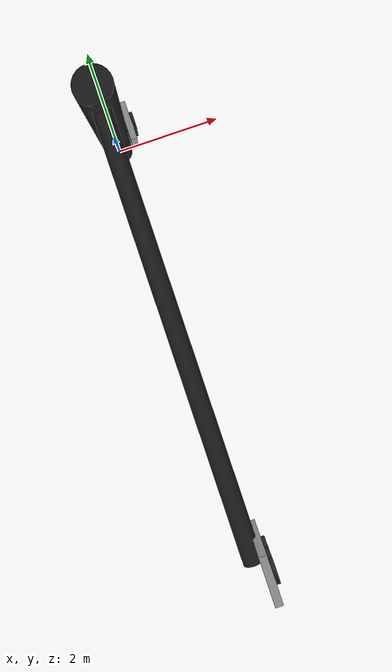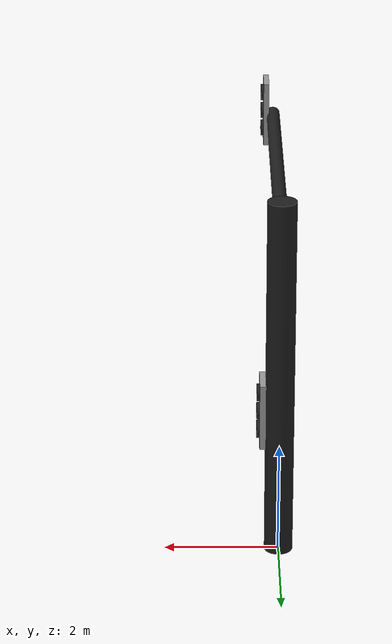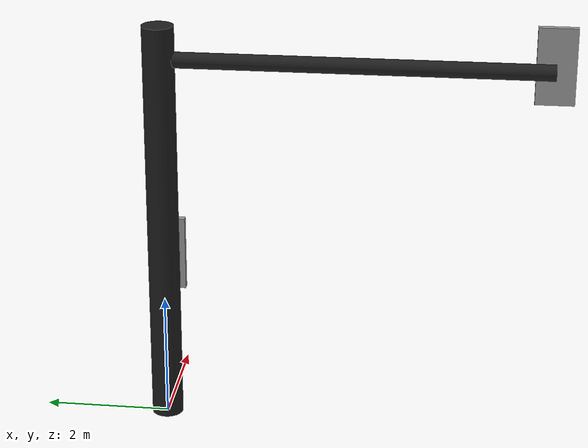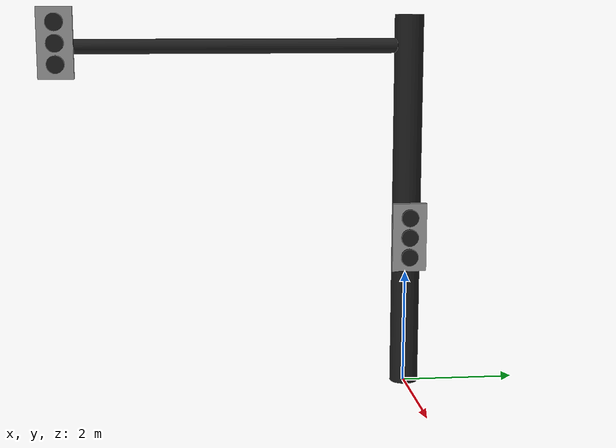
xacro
<?xml version="1.0"?>
<robot xmlns:xacro="http://www.ros.org/wiki/xacro" name="gazebo_traffic_light">

  <!-- Define some properties for reusability -->
  <xacro:property name="box_size" value="0.1 0.6 1.2"/>
  <xacro:property name="cylinder_radius" value="0.15"/>
  <xacro:property name="green_off_length" value="0.05"/>
  <xacro:property name="green_on_length" value="0.002"/>
  <xacro:property name="yellow_off_length" value="0.05"/>
  <xacro:property name="yellow_on_length" value="0.002"/>
  <xacro:property name="red_off_length" value="0.05"/>
  <xacro:property name="red_on_length" value="0.002"/>

  <!-- Cantilevered Light Model -->
  <link name="base">
    <inertial>
      <mass value="1.0"/>
      <origin xyz="0 0 0" rpy="0 0 0"/>
      <inertia ixx="1.0" ixy="0.0" ixz="0.0" iyy="1.0" iyz="0.0" izz="1.0"/>
    </inertial>
    <visual>
      <geometry>
        <cylinder radius="0.25" length="6.55"/>
      </geometry>
      <origin xyz="0 0 3.275" rpy="0 0 0"/>
      <material name="black"/>
    </visual>
    <collision>
      <geometry>
        <cylinder radius="0.25" length="6.55"/>
      </geometry>
      <origin xyz="0 0 3.275" rpy="0 0 0"/>
    </collision>
  </link>

  <gazebo reference="base">
    <gravity>0</gravity>
  </gazebo>

  <link name="cross_beam">
    <inertial>
      <mass value="1.0"/>
      <origin xyz="0 0 0" rpy="0 0 0"/>
      <inertia ixx="1.0" ixy="0.0" ixz="0.0" iyy="1.0" iyz="0.0" izz="1.0"/>
    </inertial>
    <visual>
      <geometry>
        <cylinder radius="0.125" length="6.0"/>
      </geometry>
      <origin xyz="0 0 3.0" rpy="0 0 0"/>
      <material name="black"/>
    </visual>
    <collision>
      <geometry>
        <cylinder radius="0.125" length="6.0"/>
      </geometry>
      <origin xyz="0 0 3.0" rpy="0 0 0"/>
    </collision>
  </link>

  <gazebo reference="cross_beam">
    <gravity>0</gravity>
  </gazebo>

  <joint name="cross_beam_fixed" type="fixed">
    <parent link="base"/>
    <child link="cross_beam"/>
    <origin xyz="0 0 6.015" rpy="1.5707 0 0"/>
  </joint>

  <!-- Traffic Light Model 1 -->
  <link name="light_fixture_1">
    <visual>
      <geometry>
        <box size="${box_size}" />
      </geometry>
      <origin xyz="0 0 0.6" rpy="0 0 0" />
      <material name="grey" />
    </visual>
    <collision>
      <geometry>
        <box size="${box_size}" />
      </geometry>
      <origin xyz="0 0 0.6" rpy="0 0 0" />
    </collision>
    <inertial>
      <origin xyz="0 0 0.6" rpy="0 0 0" />
      <mass value="1.0" />
      <inertia ixx="0.1" ixy="0.0" ixz="0.0" iyy="0.1" iyz="0.0" izz="0.1" />
    </inertial>
  </link>

  <gazebo reference="light_fixture_1">
    <material>Gazebo/Grey</material>
    <gravity>0</gravity>
  </gazebo>

  <!-- Traffic Light Model 2 -->
  <link name="light_fixture_2">
    <visual>
      <geometry>
        <box size="${box_size}" />
      </geometry>
      <origin xyz="0 0 2.6" rpy="0 0 0" />
      <material name="grey" />
    </visual>
    <collision>
      <geometry>
        <box size="${box_size}" />
      </geometry>
      <origin xyz="0 0 2.6" rpy="0 0 0" />
    </collision>
    <inertial>
      <origin xyz="0 0 2.6" rpy="0 0 0" />
      <mass value="1.0" />
      <inertia ixx="0.1" ixy="0.0" ixz="0.0" iyy="0.1" iyz="0.0" izz="0.1" />
    </inertial>
  </link>

  <gazebo reference="light_fixture_2">
    <material>Gazebo/Grey</material>
    <gravity>0</gravity>
  </gazebo>

  <!-- Light Fixtures -->
  <joint name="light_mount_1" type="fixed">
    <parent link="cross_beam"/>
    <child link="light_fixture_1"/>
    <origin xyz="0.13 -0.535 6.0" rpy="-1.5707 0 0"/>
  </joint>

  <joint name="light_mount_2" type="fixed">
    <parent link="base"/>
    <child link="light_fixture_2"/>
    <origin xyz="0.3 0 0.1" rpy="0 0 0"/>
  </joint>

  <!-- Traffic Light Components -->
  <link name="green_off_1">
    <visual>
      <geometry>
        <cylinder radius="${cylinder_radius}" length="${green_off_length}" />
      </geometry>
      <origin xyz="0.075 0 0.25" rpy="0 1.5707 0" />
      <material name="black" />
    </visual>
    <collision>
      <geometry>
        <cylinder radius="${cylinder_radius}" length="${green_off_length}" />
      </geometry>
      <origin xyz="0.075 0 0.25" rpy="0 1.5707 0" />
    </collision>
    <inertial>
      <origin xyz="0 0 0" rpy="0 0 0" />
      <mass value="0.1" />
      <inertia ixx="0.1" ixy="0.0" ixz="0.0" iyy="0.1" iyz="0.0" izz="0.1" />
    </inertial>
  </link>

  <gazebo reference="green_off_1">
    <material>Gazebo/Black</material>
    <gravity>0</gravity>
  </gazebo>

  <link name="green_on_1">
    <visual>
      <geometry>
        <cylinder radius="${cylinder_radius}" length="${green_on_length}" />
      </geometry>
      <origin xyz="0 0 0.25" rpy="0 1.5707 0" />
      <material name="green" />
    </visual>
    <collision>
      <geometry>
        <cylinder radius="${cylinder_radius}" length="${green_on_length}" />
      </geometry>
      <origin xyz="0 0 0.25" rpy="0 1.5707 0" />
    </collision>
    <inertial>
      <origin xyz="0 0 0" rpy="0 0 0" />
      <mass value="0.1" />
      <inertia ixx="0.1" ixy="0.0" ixz="0.0" iyy="0.1" iyz="0.0" izz="0.1" />
    </inertial>
  </link>

  <gazebo reference="green_on_1">
    <material>Gazebo/Green</material>
    <gravity>0</gravity>
  </gazebo>

  <link name="yellow_off_1">
    <visual>
      <geometry>
        <cylinder radius="${cylinder_radius}" length="${yellow_off_length}" />
      </geometry>
      <origin xyz="0.075 0 0.6" rpy="0 1.5707 0" />
      <material name="black" />
    </visual>
    <collision>
      <geometry>
        <cylinder radius="${cylinder_radius}" length="${yellow_off_length}" />
      </geometry>
      <origin xyz="0.075 0 0.6" rpy="0 1.5707 0" />
    </collision>
    <inertial>
      <origin xyz="0 0 0" rpy="0 0 0" />
      <mass value="0.1" />
      <inertia ixx="0.1" ixy="0.0" ixz="0.0" iyy="0.1" iyz="0.0" izz="0.1" />
    </inertial>
  </link>

  <gazebo reference="yellow_off_1">
    <material>Gazebo/Black</material>
    <gravity>0</gravity>
  </gazebo>

  <link name="yellow_on_1">
    <visual>
      <geometry>
        <cylinder radius="${cylinder_radius}" length="${yellow_on_length}" />
      </geometry>
      <origin xyz="0 0 0.6" rpy="0 1.5707 0" />
      <material name="yellow" />
    </visual>
    <collision>
      <geometry>
        <cylinder radius="${cylinder_radius}" length="${yellow_on_length}" />
      </geometry>
      <origin xyz="0 0 0.6" rpy="0 1.5707 0" />
    </collision>
    <inertial>
      <origin xyz="0 0 0" rpy="0 0 0" />
      <mass value="0.1" />
      <inertia ixx="0.1" ixy="0.0" ixz="0.0" iyy="0.1" iyz="0.0" izz="0.1" />
    </inertial>
  </link>

  <gazebo reference="yellow_on_1">
    <material>Gazebo/Yellow</material>
    <gravity>0</gravity>
  </gazebo>

  <link name="red_off_1">
    <visual>
      <geometry>
        <cylinder radius="${cylinder_radius}" length="${red_off_length}" />
      </geometry>
      <origin xyz="0.075 0 0.95" rpy="0 1.5707 0" />
      <material name="black" />
    </visual>
    <collision>
      <geometry>
        <cylinder radius="${cylinder_radius}" length="${red_off_length}" />
      </geometry>
      <origin xyz="0.075 0 0.95" rpy="0 1.5707 0" />
    </collision>
    <inertial>
      <origin xyz="0 0 0" rpy="0 0 0" />
      <mass value="0.1" />
      <inertia ixx="0.1" ixy="0.0" ixz="0.0" iyy="0.1" iyz="0.0" izz="0.1" />
    </inertial>
  </link>

  <gazebo reference="red_off_1">
    <material>Gazebo/Black</material>
    <gravity>0</gravity>
  </gazebo>

  <link name="red_on_1">
    <visual>
      <geometry>
        <cylinder radius="${cylinder_radius}" length="${red_on_length}" />
      </geometry>
      <origin xyz="0 0 0.95" rpy="0 1.5707 0" />
      <material name="red" />
    </visual>
    <collision>
      <geometry>
        <cylinder radius="${cylinder_radius}" length="${red_on_length}" />
      </geometry>
      <origin xyz="0 0 0.95" rpy="0 1.5707 0" />
    </collision>
    <inertial>
      <origin xyz="0 0 0" rpy="0 0 0" />
      <mass value="0.1" />
      <inertia ixx="0.1" ixy="0.0" ixz="0.0" iyy="0.1" iyz="0.0" izz="0.1" />
    </inertial>
  </link>

  <gazebo reference="red_on_1">
    <material>Gazebo/Red</material>
    <gravity>0</gravity>
  </gazebo>

  <!-- Traffic Light Components 2 -->
  <link name="green_off_2">
    <visual>
      <geometry>
        <cylinder radius="${cylinder_radius}" length="${green_off_length}" />
      </geometry>
      <origin xyz="0.075 0 2.25" rpy="0 1.5707 0" />
      <material name="black" />
    </visual>
    <collision>
      <geometry>
        <cylinder radius="${cylinder_radius}" length="${green_off_length}" />
      </geometry>
      <origin xyz="0.075 0 2.25" rpy="0 1.5707 0" />
    </collision>
    <inertial>
      <origin xyz="0 0 0" rpy="0 0 0" />
      <mass value="0.1" />
      <inertia ixx="0.1" ixy="0.0" ixz="0.0" iyy="0.1" iyz="0.0" izz="0.1" />
    </inertial>
  </link>

  <gazebo reference="green_off_2">
    <material>Gazebo/Black</material>
    <gravity>0</gravity>
  </gazebo>

  <link name="green_on_2">
    <visual>
      <geometry>
        <cylinder radius="${cylinder_radius}" length="${green_on_length}" />
      </geometry>
      <origin xyz="0 0 2.25" rpy="0 1.5707 0" />
      <material name="green" />
    </visual>
    <collision>
      <geometry>
        <cylinder radius="${cylinder_radius}" length="${green_on_length}" />
      </geometry>
      <origin xyz="0 0 2.25" rpy="0 1.5707 0" />
    </collision>
    <inertial>
      <origin xyz="0 0 0" rpy="0 0 0" />
      <mass value="0.1" />
      <inertia ixx="0.1" ixy="0.0" ixz="0.0" iyy="0.1" iyz="0.0" izz="0.1" />
    </inertial>
  </link>

  <gazebo reference="green_on_2">
    <material>Gazebo/Green</material>
    <gravity>0</gravity>
  </gazebo>

  <link name="yellow_off_2">
    <visual>
      <geometry>
        <cylinder radius="${cylinder_radius}" length="${yellow_off_length}" />
      </geometry>
      <origin xyz="0.075 0 2.6" rpy="0 1.5707 0" />
      <material name="black" />
    </visual>
    <collision>
      <geometry>
        <cylinder radius="${cylinder_radius}" length="${yellow_off_length}" />
      </geometry>
      <origin xyz="0.075 0 2.6" rpy="0 1.5707 0" />
    </collision>
    <inertial>
      <origin xyz="0 0 0" rpy="0 0 0" />
      <mass value="0.1" />
      <inertia ixx="0.1" ixy="0.0" ixz="0.0" iyy="0.1" iyz="0.0" izz="0.1" />
    </inertial>
  </link>

  <gazebo reference="yellow_off_2">
    <material>Gazebo/Black</material>
    <gravity>0</gravity>
  </gazebo>

  <link name="yellow_on_2">
    <visual>
      <geometry>
        <cylinder radius="${cylinder_radius}" length="${yellow_on_length}" />
      </geometry>
      <origin xyz="0 0 2.6" rpy="0 1.5707 0" />
      <material name="yellow" />
    </visual>
    <collision>
      <geometry>
        <cylinder radius="${cylinder_radius}" length="${yellow_on_length}" />
      </geometry>
      <origin xyz="0 0 2.6" rpy="0 1.5707 0" />
    </collision>
    <inertial>
      <origin xyz="0 0 0" rpy="0 0 0" />
      <mass value="0.1" />
      <inertia ixx="0.1" ixy="0.0" ixz="0.0" iyy="0.1" iyz="0.0" izz="0.1" />
    </inertial>
  </link>

  <gazebo reference="yellow_on_2">
    <material>Gazebo/Yellow</material>
    <gravity>0</gravity>
  </gazebo>

  <link name="red_off_2">
    <visual>
      <geometry>
        <cylinder radius="${cylinder_radius}" length="${red_off_length}" />
      </geometry>
      <origin xyz="0.075 0 2.95" rpy="0 1.5707 0" />
      <material name="black" />
    </visual>
    <collision>
      <geometry>
        <cylinder radius="${cylinder_radius}" length="${red_off_length}" />
      </geometry>
      <origin xyz="0.075 0 2.95" rpy="0 1.5707 0" />
    </collision>
    <inertial>
      <origin xyz="0 0 0" rpy="0 0 0" />
      <mass value="0.1" />
      <inertia ixx="0.1" ixy="0.0" ixz="0.0" iyy="0.1" iyz="0.0" izz="0.1" />
    </inertial>
  </link>

  <gazebo reference="red_off_2">
    <material>Gazebo/Black</material>
    <gravity>0</gravity>
  </gazebo>

  <link name="red_on_2">
    <visual>
      <geometry>
        <cylinder radius="${cylinder_radius}" length="${red_on_length}" />
      </geometry>
      <origin xyz="0 0 2.95" rpy="0 1.5707 0" />
      <material name="red" />
    </visual>
    <collision>
      <geometry>
        <cylinder radius="${cylinder_radius}" length="${red_on_length}" />
      </geometry>
      <origin xyz="0 0 2.95" rpy="0 1.5707 0" />
    </collision>
    <inertial>
      <origin xyz="0 0 0" rpy="0 0 0" />
      <mass value="0.1" />
      <inertia ixx="0.1" ixy="0.0" ixz="0.0" iyy="0.1" iyz="0.0" izz="0.1" />
    </inertial>
  </link>

  <gazebo reference="red_on_2">
    <material>Gazebo/Red</material>
    <gravity>0</gravity>
  </gazebo>

  <joint name="green_switch_1" type="fixed">
    <parent link="light_fixture_1" />
    <child link="green_off_1" />
    <origin xyz="0 0 0" rpy="0 0 0" />
  </joint>

  <joint name="green_base_1" type="prismatic">
    <parent link="light_fixture_1" />
    <child link="green_on_1" />
    <origin xyz="0 0 0" rpy="0 0 0" />
    <axis xyz="1 0 0" />
    <limit lower="0" upper="0.101" effort="100" velocity="100" />
  </joint>

  <joint name="yellow_switch_1" type="fixed">
    <parent link="light_fixture_1" />
    <child link="yellow_off_1" />
    <origin xyz="0 0 0" rpy="0 0 0" />
  </joint>

  <joint name="yellow_base_1" type="prismatic">
    <parent link="light_fixture_1" />
    <child link="yellow_on_1" />
    <origin xyz="0 0 0" rpy="0 0 0" />
    <axis xyz="1 0 0" />
    <limit lower="0" upper="0.101" effort="100" velocity="100" />
  </joint>

  <joint name="red_switch_1" type="fixed">
    <parent link="light_fixture_1" />
    <child link="red_off_1" />
    <origin xyz="0 0 0" rpy="0 0 0" />
  </joint>

  <joint name="red_base_1" type="prismatic">
    <parent link="light_fixture_1" />
    <child link="red_on_1" />
    <origin xyz="0 0 0" rpy="0 0 0" />
    <axis xyz="1 0 0" />
    <limit lower="0" upper="0.101" effort="100" velocity="100" />
  </joint>

  <joint name="green_switch_2" type="fixed">
    <parent link="light_fixture_2" />
    <child link="green_off_2" />
    <origin xyz="0 0 0" rpy="0 0 0" />
  </joint>

  <joint name="green_base_2" type="prismatic">
    <parent link="light_fixture_2" />
    <child link="green_on_2" />
    <origin xyz="0 0 0" rpy="0 0 0" />
    <axis xyz="1 0 0" />
    <limit lower="0" upper="0.101" effort="100" velocity="100" />
  </joint>

  <joint name="yellow_switch_2" type="fixed">
    <parent link="light_fixture_2" />
    <child link="yellow_off_2" />
    <origin xyz="0 0 0" rpy="0 0 0" />
  </joint>

  <joint name="yellow_base_2" type="prismatic">
    <parent link="light_fixture_2" />
    <child link="yellow_on_2" />
    <origin xyz="0 0 0" rpy="0 0 0" />
    <axis xyz="1 0 0" />
    <limit lower="0" upper="0.101" effort="100" velocity="100" />
  </joint>

  <joint name="red_switch_2" type="fixed">
    <parent link="light_fixture_2" />
    <child link="red_off_2" />
    <origin xyz="0 0 0" rpy="0 0 0" />
  </joint>

  <joint name="red_base_2" type="prismatic">
    <parent link="light_fixture_2" />
    <child link="red_on_2" />
    <origin xyz="0 0 0" rpy="0 0 0" />
    <axis xyz="1 0 0" />
    <limit lower="0" upper="0.101" effort="100" velocity="100" />
  </joint>

</robot>
